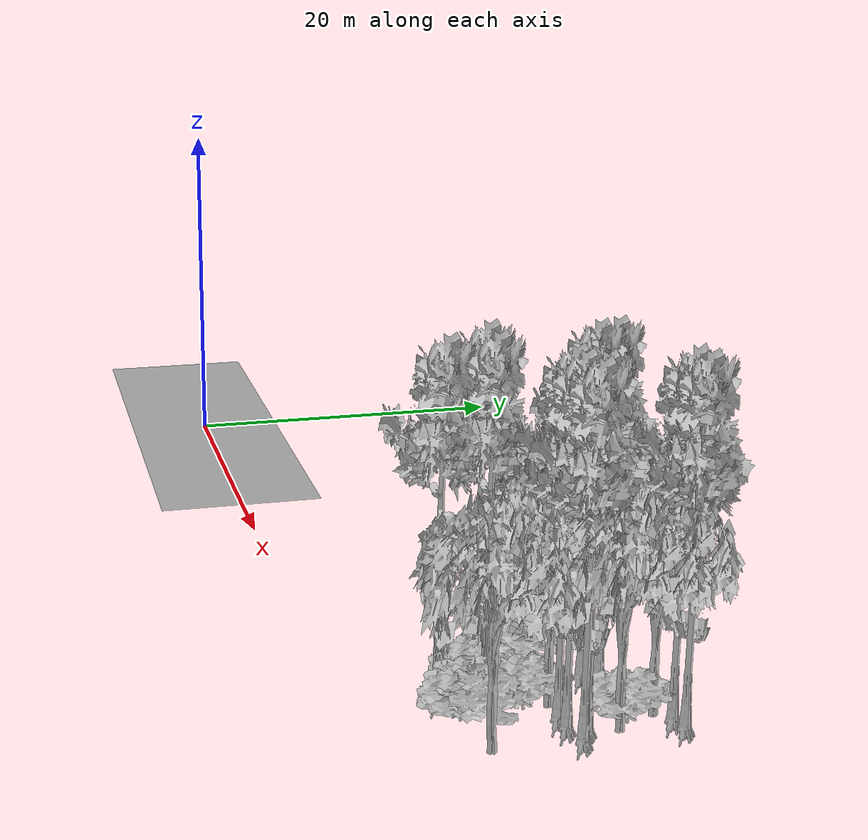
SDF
<sdf version="1.7">
 <world name="default">
  <model name="ground_plane">
   <static>1</static>
   <link name="link">
    <collision name="collision">
     <pose>-50 0 0 0 -0 0</pose>
     <geometry><plane><normal>0 0 1</normal><size>100 100</size></plane></geometry>
     <surface><contact><ode><min_depth>0.01</min_depth><max_vel>0</max_vel></ode></contact></surface>
    </collision>
    <visual name="grass">
     <cast_shadows>0</cast_shadows>
     <geometry>
      <mesh>
       <scale>0.5814285714285714 0.18142857142857144 0.1</scale>
       <uri>file://grass_plane/meshes/grass_plane.dae</uri>
      </mesh>
     </geometry>
    </visual>
   </link>
  </model>
  <model name="Tree 4">
   <static>1</static>
   <pose>41.12326072533456 7.020379282527806 0 1.57079 -0 0</pose>
   <link name="link">
    <collision name="collision">
     <geometry><mesh><scale>3.5 5 3.5</scale><uri>model://tree_9/meshes/tree_9.obj</uri></mesh></geometry>
    </collision>
    <visual name="visual">
     <geometry><mesh><scale>3.5 5 3.5</scale><uri>model://tree_9/meshes/tree_9.obj</uri></mesh></geometry>
    </visual>
   </link>
  </model>
  <model name="Tree 29">
   <static>1</static>
   <pose>44.93335053796652 5.789246295353244 0 1.57079 -0 0</pose>
   <link name="link">
    <collision name="collision">
     <geometry><mesh><scale>3 2 3</scale><uri>model://tree_3/meshes/tree_3.obj</uri></mesh></geometry>
    </collision>
    <visual name="visual">
     <geometry><mesh><scale>3 2 3</scale><uri>model://tree_3/meshes/tree_3.obj</uri></mesh></geometry>
    </visual>
   </link>
  </model>
  <model name="Tree 58">
   <static>1</static>
   <pose>48.03660171593785 14.77748466433778 0 1.57079 -0 0</pose>
   <link name="link">
    <collision name="collision">
     <geometry><mesh><scale>3.5 5 3.5</scale><uri>model://tree_9/meshes/tree_9.obj</uri></mesh></geometry>
    </collision>
    <visual name="visual">
     <geometry><mesh><scale>3.5 5 3.5</scale><uri>model://tree_9/meshes/tree_9.obj</uri></mesh></geometry>
    </visual>
   </link>
  </model>
  <model name="Tree 94">
   <static>1</static>
   <pose>42.99137449676658 4.568670595293128 0 1.57079 -0 0</pose>
   <link name="link">
    <collision name="collision">
     <geometry><mesh><scale>3.5 5 3.5</scale><uri>model://tree_9/meshes/tree_9.obj</uri></mesh></geometry>
    </collision>
    <visual name="visual">
     <geometry><mesh><scale>3.5 5 3.5</scale><uri>model://tree_9/meshes/tree_9.obj</uri></mesh></geometry>
    </visual>
   </link>
  </model>
  <model name="Tree 100">
   <static>1</static>
   <pose>44.70444230894806 5.230778311834971 0 1.57079 -0 0</pose>
   <link name="link">
    <collision name="collision">
     <geometry><mesh><scale>4 2.5 4</scale><uri>model://tree_1/meshes/tree_1.obj</uri></mesh></geometry>
    </collision>
    <visual name="visual">
     <geometry><mesh><scale>4 2.5 4</scale><uri>model://tree_1/meshes/tree_1.obj</uri></mesh></geometry>
    </visual>
   </link>
  </model>
  <model name="Tree 110">
   <static>1</static>
   <pose>45.939555086825834 9.479878620129188 0 1.57079 -0 0</pose>
   <link name="link">
    <collision name="collision">
     <geometry><mesh><scale>3.5 5 3.5</scale><uri>model://tree_9/meshes/tree_9.obj</uri></mesh></geometry>
    </collision>
    <visual name="visual">
     <geometry><mesh><scale>3.5 5 3.5</scale><uri>model://tree_9/meshes/tree_9.obj</uri></mesh></geometry>
    </visual>
   </link>
  </model>
  <model name="Tree 120">
   <static>1</static>
   <pose>43.022187529581714 6.888775764610706 0 1.57079 -0 0</pose>
   <link name="link">
    <collision name="collision">
     <geometry><mesh><scale>3.5 5 3.5</scale><uri>model://tree_9/meshes/tree_9.obj</uri></mesh></geometry>
    </collision>
    <visual name="visual">
     <geometry><mesh><scale>3.5 5 3.5</scale><uri>model://tree_9/meshes/tree_9.obj</uri></mesh></geometry>
    </visual>
   </link>
  </model>
  <model name="Tree 183">
   <static>1</static>
   <pose>42.08251370584438 11.99588001391528 0 1.57079 -0 0</pose>
   <link name="link">
    <collision name="collision">
     <geometry><mesh><scale>3.5 5 3.5</scale><uri>model://tree_9/meshes/tree_9.obj</uri></mesh></geometry>
    </collision>
    <visual name="visual">
     <geometry><mesh><scale>3.5 5 3.5</scale><uri>model://tree_9/meshes/tree_9.obj</uri></mesh></geometry>
    </visual>
   </link>
  </model>
  <model name="Tree 224">
   <static>1</static>
   <pose>47.19590974840628 10.414020828452763 0 1.57079 -0 0</pose>
   <link name="link">
    <collision name="collision">
     <geometry><mesh><scale>3.5 5 3.5</scale><uri>model://tree_9/meshes/tree_9.obj</uri></mesh></geometry>
    </collision>
    <visual name="visual">
     <geometry><mesh><scale>3.5 5 3.5</scale><uri>model://tree_9/meshes/tree_9.obj</uri></mesh></geometry>
    </visual>
   </link>
  </model>
  <model name="Tree 235">
   <static>1</static>
   <pose>48.18762249904391 9.866268498844384 0 1.57079 -0 0</pose>
   <link name="link">
    <collision name="collision">
     <geometry><mesh><scale>3.5 5 3.5</scale><uri>model://tree_9/meshes/tree_9.obj</uri></mesh></geometry>
    </collision>
    <visual name="visual">
     <geometry><mesh><scale>3.5 5 3.5</scale><uri>model://tree_9/meshes/tree_9.obj</uri></mesh></geometry>
    </visual>
   </link>
  </model>
  <model name="Tree 261">
   <static>1</static>
   <pose>41.605587506611116 6.618543861972402 0 1.57079 -0 0</pose>
   <link name="link">
    <collision name="collision">
     <geometry><mesh><scale>4 2.5 4</scale><uri>model://tree_1/meshes/tree_1.obj</uri></mesh></geometry>
    </collision>
    <visual name="visual">
     <geometry><mesh><scale>4 2.5 4</scale><uri>model://tree_1/meshes/tree_1.obj</uri></mesh></geometry>
    </visual>
   </link>
  </model>
  <model name="Tree 274">
   <static>1</static>
   <pose>41.73819922205274 13.023142102727128 0 1.57079 -0 0</pose>
   <link name="link">
    <collision name="collision">
     <geometry><mesh><scale>3.5 5 3.5</scale><uri>model://tree_9/meshes/tree_9.obj</uri></mesh></geometry>
    </collision>
    <visual name="visual">
     <geometry><mesh><scale>3.5 5 3.5</scale><uri>model://tree_9/meshes/tree_9.obj</uri></mesh></geometry>
    </visual>
   </link>
  </model>
  <model name="Tree 283">
   <static>1</static>
   <pose>39.54797923540069 11.786386482848098 0 1.57079 -0 0</pose>
   <link name="link">
    <collision name="collision">
     <geometry><mesh><scale>3.5 5 3.5</scale><uri>model://tree_2/meshes/tree_2.obj</uri></mesh></geometry>
    </collision>
    <visual name="visual">
     <geometry><mesh><scale>3.5 5 3.5</scale><uri>model://tree_2/meshes/tree_2.obj</uri></mesh></geometry>
    </visual>
   </link>
  </model>
  <model name="Tree 343">
   <static>1</static>
   <pose>46.62395640682901 13.748259688734368 0 1.57079 -0 0</pose>
   <link name="link">
    <collision name="collision">
     <geometry><mesh><scale>3.5 5 3.5</scale><uri>model://tree_2/meshes/tree_2.obj</uri></mesh></geometry>
    </collision>
    <visual name="visual">
     <geometry><mesh><scale>3.5 5 3.5</scale><uri>model://tree_2/meshes/tree_2.obj</uri></mesh></geometry>
    </visual>
   </link>
  </model>
  <model name="Tree 347">
   <static>1</static>
   <pose>47.71972245416657 11.714026079087578 0 1.57079 -0 0</pose>
   <link name="link">
    <collision name="collision">
     <geometry><mesh><scale>3.5 5 3.5</scale><uri>model://tree_2/meshes/tree_2.obj</uri></mesh></geometry>
    </collision>
    <visual name="visual">
     <geometry><mesh><scale>3.5 5 3.5</scale><uri>model://tree_2/meshes/tree_2.obj</uri></mesh></geometry>
    </visual>
   </link>
  </model>
  <model name="Tree 410">
   <static>1</static>
   <pose>47.175026071362595 14.535331657238281 0 1.57079 -0 0</pose>
   <link name="link">
    <collision name="collision">
     <geometry><mesh><scale>3.5 5 3.5</scale><uri>model://tree_9/meshes/tree_9.obj</uri></mesh></geometry>
    </collision>
    <visual name="visual">
     <geometry><mesh><scale>3.5 5 3.5</scale><uri>model://tree_9/meshes/tree_9.obj</uri></mesh></geometry>
    </visual>
   </link>
  </model>
  <model name="Tree 428">
   <static>1</static>
   <pose>48.30522751965056 5.540882928000091 0 1.57079 -0 0</pose>
   <link name="link">
    <collision name="collision">
     <geometry><mesh><scale>3.5 5 3.5</scale><uri>model://tree_2/meshes/tree_2.obj</uri></mesh></geometry>
    </collision>
    <visual name="visual">
     <geometry><mesh><scale>3.5 5 3.5</scale><uri>model://tree_2/meshes/tree_2.obj</uri></mesh></geometry>
    </visual>
   </link>
  </model>
  <model name="Tree 449">
   <static>1</static>
   <pose>46.82062912662343 9.567877398687433 0 1.57079 -0 0</pose>
   <link name="link">
    <collision name="collision">
     <geometry><mesh><scale>3.5 5 3.5</scale><uri>model://tree_9/meshes/tree_9.obj</uri></mesh></geometry>
    </collision>
    <visual name="visual">
     <geometry><mesh><scale>3.5 5 3.5</scale><uri>model://tree_9/meshes/tree_9.obj</uri></mesh></geometry>
    </visual>
   </link>
  </model>
  <model name="Tree 473">
   <static>1</static>
   <pose>39.45969739356717 10.564552520335152 0 1.57079 -0 0</pose>
   <link name="link">
    <collision name="collision">
     <geometry><mesh><scale>4 2.5 4</scale><uri>model://tree_1/meshes/tree_1.obj</uri></mesh></geometry>
    </collision>
    <visual name="visual">
     <geometry><mesh><scale>4 2.5 4</scale><uri>model://tree_1/meshes/tree_1.obj</uri></mesh></geometry>
    </visual>
   </link>
  </model>
  <model name="Tree 501">
   <static>1</static>
   <pose>44.73951187124665 9.370613648425955 0 1.57079 -0 0</pose>
   <link name="link">
    <collision name="collision">
     <geometry><mesh><scale>3.5 5 3.5</scale><uri>model://tree_2/meshes/tree_2.obj</uri></mesh></geometry>
    </collision>
    <visual name="visual">
     <geometry><mesh><scale>3.5 5 3.5</scale><uri>model://tree_2/meshes/tree_2.obj</uri></mesh></geometry>
    </visual>
   </link>
  </model>
  <model name="Tree 503">
   <static>1</static>
   <pose>44.251871205963795 8.362643048819905 0 1.57079 -0 0</pose>
   <link name="link">
    <collision name="collision">
     <geometry><mesh><scale>4 2.5 4</scale><uri>model://tree_1/meshes/tree_1.obj</uri></mesh></geometry>
    </collision>
    <visual name="visual">
     <geometry><mesh><scale>4 2.5 4</scale><uri>model://tree_1/meshes/tree_1.obj</uri></mesh></geometry>
    </visual>
   </link>
  </model>
  <model name="Tree 511">
   <static>1</static>
   <pose>43.847027899853856 5.927164198776541 0 1.57079 -0 0</pose>
   <link name="link">
    <collision name="collision">
     <geometry><mesh><scale>4 2.5 4</scale><uri>model://tree_1/meshes/tree_1.obj</uri></mesh></geometry>
    </collision>
    <visual name="visual">
     <geometry><mesh><scale>4 2.5 4</scale><uri>model://tree_1/meshes/tree_1.obj</uri></mesh></geometry>
    </visual>
   </link>
  </model>
  <model name="Tree 523">
   <static>1</static>
   <pose>46.58276749333308 12.54557309402147 0 1.57079 -0 0</pose>
   <link name="link">
    <collision name="collision">
     <geometry><mesh><scale>4 2.5 4</scale><uri>model://tree_1/meshes/tree_1.obj</uri></mesh></geometry>
    </collision>
    <visual name="visual">
     <geometry><mesh><scale>4 2.5 4</scale><uri>model://tree_1/meshes/tree_1.obj</uri></mesh></geometry>
    </visual>
   </link>
  </model>
 </world>
</sdf>
